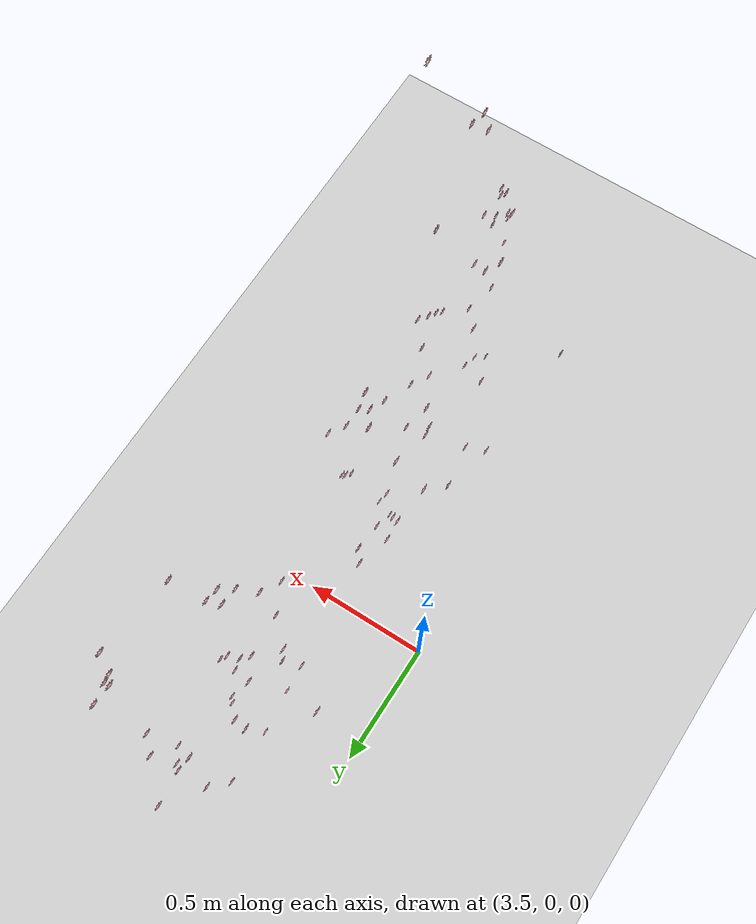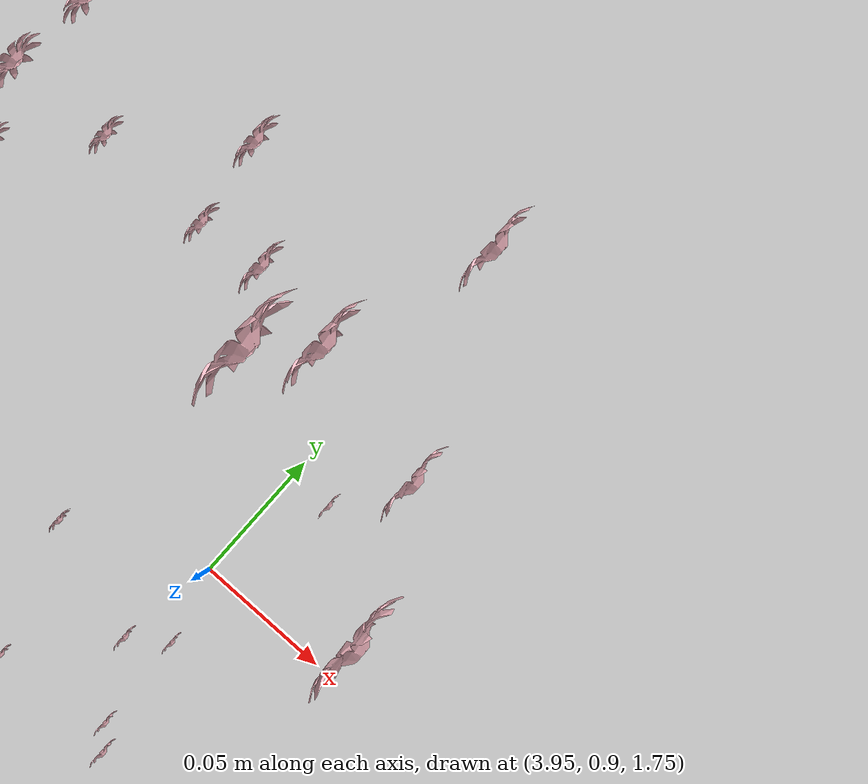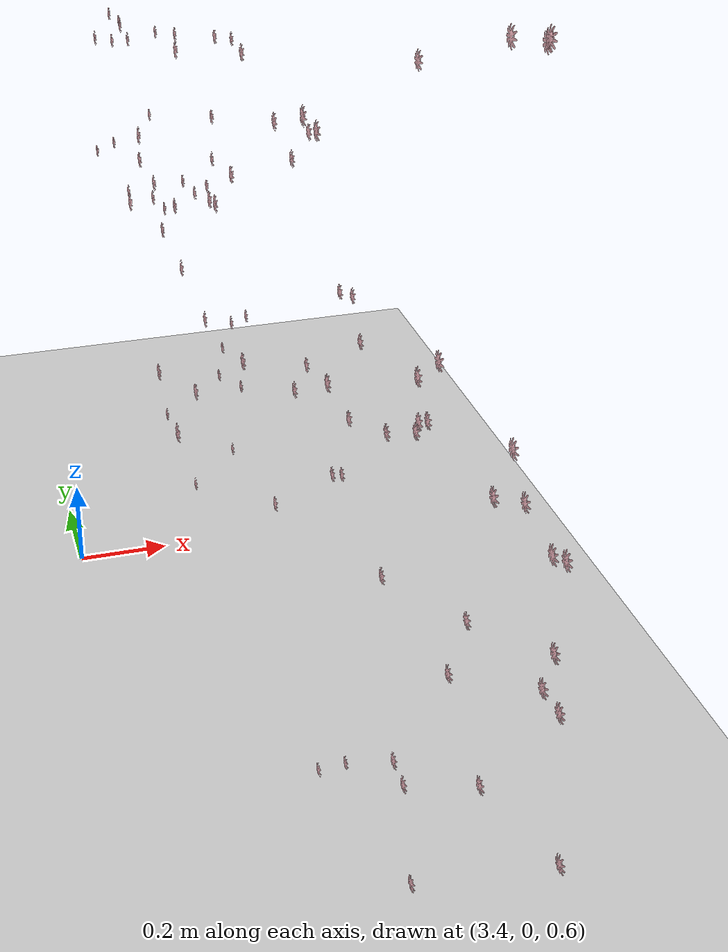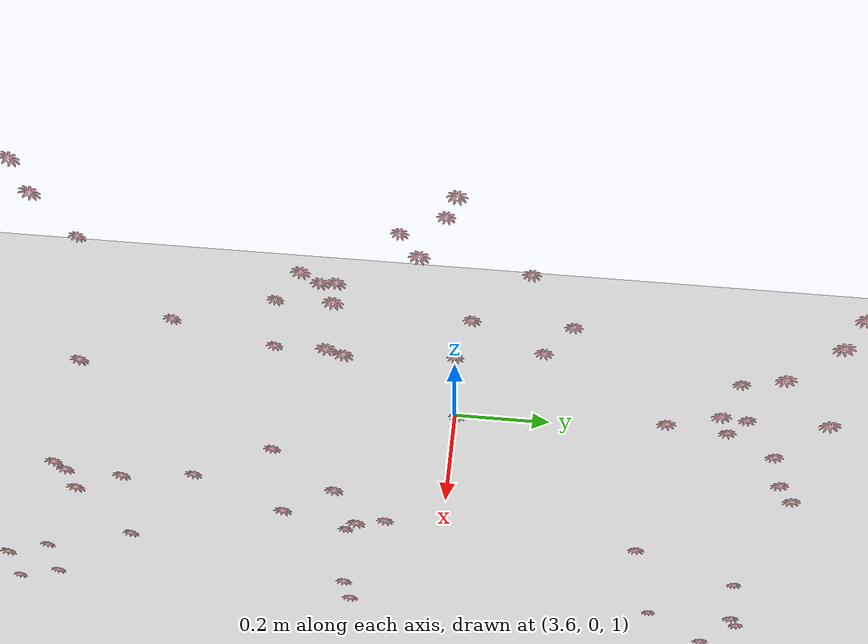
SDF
<?xml version="1.0" ?>
<sdf version="1.4">
  <world name="pollination_world">
    <include>
      <uri>model://ground_plane</uri>
    </include>
    <include>
      <uri>model://sun</uri>
    </include>

    <!-- //__________________________start add targets_________________________// -->
<include>
  <uri>model://flower2</uri>
  <name>target0</name>
  <pose>3.811854703426361 -0.198925614356995 0.847505693435669 0 -1.57 0</pose>
</include>
<include>
  <uri>model://flower2</uri>
  <name>target1</name>
  <pose>3.9413291144371034 -0.374187941551208 0.196296977996826 0 -1.57 0</pose>
</include>
<include>
  <uri>model://flower2</uri>
  <name>target2</name>
  <pose>3.880312125682831 -0.35691833019256597 0.173609752655029 0 -1.57 0</pose>
</include>
<include>
  <uri>model://flower2</uri>
  <name>target3</name>
  <pose>3.9065389323234556 -0.623567585945129 0.9475400352478031 0 -1.57 0</pose>
</include>
<include>
  <uri>model://flower2</uri>
  <name>target4</name>
  <pose>3.853332622051239 -0.8787138795852659 0.717423534393311 0 -1.57 0</pose>
</include>
<include>
  <uri>model://flower2</uri>
  <name>target5</name>
  <pose>3.855951926708221 -1.0008076143264801 0.5203785705566409 0 -1.57 0</pose>
</include>
<include>
  <uri>model://flower2</uri>
  <name>target6</name>
  <pose>3.923054749965668 -1.09487541675568 0.8533997631072999 0 -1.57 0</pose>
</include>
<include>
  <uri>model://flower2</uri>
  <name>target7</name>
  <pose>3.980927789211273 -1.28488209247589 0.85346474647522 0 -1.57 0</pose>
</include>
<include>
  <uri>model://flower2</uri>
  <name>target8</name>
  <pose>3.881071412563324 -0.868321042060852 0.637629718780518 0 -1.57 0</pose>
</include>
<include>
  <uri>model://flower2</uri>
  <name>target9</name>
  <pose>3.9756541228294373 -0.163814749717712 0.8746062469482421 0 -1.57 0</pose>
</include>
<include>
  <uri>model://flower2</uri>
  <name>target10</name>
  <pose>3.9478764510154725 -0.179800801277161 0.890403757095337 0 -1.57 0</pose>
</include>
<include>
  <uri>model://flower2</uri>
  <name>target11</name>
  <pose>3.922624576091766 -1.07530163288116 1.5165232086181601 0 -1.57 0</pose>
</include>
<include>
  <uri>model://flower2</uri>
  <name>target12</name>
  <pose>3.9833188033103943 -1.16993748188019 1.1948593211174 0 -1.57 0</pose>
</include>
<include>
  <uri>model://flower2</uri>
  <name>target13</name>
  <pose>3.9680015349388125 -1.23565037250519 1.13581125378609 0 -1.57 0</pose>
</include>
<include>
  <uri>model://flower2</uri>
  <name>target14</name>
  <pose>3.9510947108268737 -1.2056594133377099 1.1623325514793401 0 -1.57 0</pose>
</include>
<include>
  <uri>model://flower2</uri>
  <name>target15</name>
  <pose>3.9804967856407165 -1.17003841876984 1.37232614994049 0 -1.57 0</pose>
</include>
<include>
  <uri>model://flower2</uri>
  <name>target16</name>
  <pose>3.9697021651268005 -1.14680481433868 1.36801821708679 0 -1.57 0</pose>
</include>
<include>
  <uri>model://flower2</uri>
  <name>target17</name>
  <pose>3.989009473323822 -0.843062252998352 0.99578902721405 0 -1.57 0</pose>
</include>
<include>
  <uri>model://flower2</uri>
  <name>target18</name>
  <pose>3.9246273684501647 -0.9254810380935671 0.955590238571167 0 -1.57 0</pose>
</include>
<include>
  <uri>model://flower2</uri>
  <name>target19</name>
  <pose>3.974273660182953 -0.63024929523468 1.29217159748077 0 -1.57 0</pose>
</include>
<include>
  <uri>model://flower2</uri>
  <name>target20</name>
  <pose>3.9480139994621277 -0.6521764993667599 1.30712275028229 0 -1.57 0</pose>
</include>
<include>
  <uri>model://flower2</uri>
  <name>target21</name>
  <pose>3.9190586733818056 -0.571501240730286 1.24049582242966 0 -1.57 0</pose>
</include>
<include>
  <uri>model://flower2</uri>
  <name>target22</name>
  <pose>3.972270276546478 -1.03800556659698 1.38818074226379 0 -1.57 0</pose>
</include>
<include>
  <uri>model://flower2</uri>
  <name>target23</name>
  <pose>3.928138234615326 -1.01814388751984 1.39341772079468 0 -1.57 0</pose>
</include>
<include>
  <uri>model://flower2</uri>
  <name>target24</name>
  <pose>3.9250788569450377 -0.597917084693909 1.94507493972778 0 -1.57 0</pose>
</include>
<include>
  <uri>model://flower2</uri>
  <name>target25</name>
  <pose>3.9938568663597107 -0.898326840400696 2.05459264755249 0 -1.57 0</pose>
</include>
<include>
  <uri>model://flower2</uri>
  <name>target26</name>
  <pose>3.977669198513031 -0.9391159486770629 2.0724974250793498 0 -1.57 0</pose>
</include>
<include>
  <uri>model://flower2</uri>
  <name>target27</name>
  <pose>3.9392718386650083 -0.8974258852005 2.06510564804077 0 -1.57 0</pose>
</include>
<include>
  <uri>model://flower2</uri>
  <name>target28</name>
  <pose>3.995604703426361 -0.599854893684387 2.66763029098511 0 -1.57 0</pose>
</include>
<include>
  <uri>model://flower2</uri>
  <name>target29</name>
  <pose>3.756909663677216 -0.610247025489807 1.8490823554992701 0 -1.57 0</pose>
</include>
<include>
  <uri>model://flower2</uri>
  <name>target30</name>
  <pose>3.725073618888855 -0.639807190895081 1.88637426376343 0 -1.57 0</pose>
</include>
<include>
  <uri>model://flower2</uri>
  <name>target31</name>
  <pose>3.817332293987274 -0.312708449363708 1.2013356512785 0 -1.57 0</pose>
</include>
<include>
  <uri>model://flower2</uri>
  <name>target32</name>
  <pose>3.877674157619476 -0.8038682985305791 1.4933322429656999 0 -1.57 0</pose>
</include>
<include>
  <uri>model://flower2</uri>
  <name>target33</name>
  <pose>3.9708507323265074 -0.258897976875305 1.26047307372093 0 -1.57 0</pose>
</include>
<include>
  <uri>model://flower2</uri>
  <name>target34</name>
  <pose>3.886701323986053 -0.450131001472473 1.20439617455006 0 -1.57 0</pose>
</include>
<include>
  <uri>model://flower2</uri>
  <name>target35</name>
  <pose>3.663096728920937 -0.502863850593567 1.3904647254943798 0 -1.57 0</pose>
</include>
<include>
  <uri>model://flower2</uri>
  <name>target36</name>
  <pose>3.777468950748444 -0.644111695289612 1.4078600692749001 0 -1.57 0</pose>
</include>
<include>
  <uri>model://flower2</uri>
  <name>target37</name>
  <pose>3.49685909986496 -0.723827481269836 1.39924926757813 0 -1.57 0</pose>
</include>
<include>
  <uri>model://flower2</uri>
  <name>target38</name>
  <pose>3.9334561610221863 -0.677683110237122 1.3043656682968099 0 -1.57 0</pose>
</include>
<include>
  <uri>model://flower2</uri>
  <name>target39</name>
  <pose>3.844252021312714 -0.961726269721985 1.61209173202515 0 -1.57 0</pose>
</include>
<include>
  <uri>model://flower2</uri>
  <name>target40</name>
  <pose>3.932240331172943 0.585692019462585 0.687498550415039 0 -1.57 0</pose>
</include>
<include>
  <uri>model://flower2</uri>
  <name>target41</name>
  <pose>3.781292488574982 0.503812460899353 0.44389978408813496 0 -1.57 0</pose>
</include>
<include>
  <uri>model://flower2</uri>
  <name>target42</name>
  <pose>3.953522517681122 0.613882479667664 0.886912651062012 0 -1.57 0</pose>
</include>
<include>
  <uri>model://flower2</uri>
  <name>target43</name>
  <pose>3.889002559185028 0.663838534355164 0.686715030670166 0 -1.57 0</pose>
</include>
<include>
  <uri>model://flower2</uri>
  <name>target44</name>
  <pose>3.9214482855796815 0.647487101554871 0.44784559249877903 0 -1.57 0</pose>
</include>
<include>
  <uri>model://flower2</uri>
  <name>target45</name>
  <pose>3.743596580028534 0.6876015424728389 0.5665639305114749 0 -1.57 0</pose>
</include>
<include>
  <uri>model://flower2</uri>
  <name>target46</name>
  <pose>3.955040624141693 0.8996556043624879 0.639692707061768 0 -1.57 0</pose>
</include>
<include>
  <uri>model://flower2</uri>
  <name>target47</name>
  <pose>3.862798459529877 1.01609027385712 1.5392929649353 0 -1.57 0</pose>
</include>
<include>
  <uri>model://flower2</uri>
  <name>target48</name>
  <pose>3.818658177852631 1.0608224058151199 1.53423749923706 0 -1.57 0</pose>
</include>
<include>
  <uri>model://flower2</uri>
  <name>target49</name>
  <pose>3.785798623561859 1.01756724834442 1.3244892692565902 0 -1.57 0</pose>
</include>
<include>
  <uri>model://flower2</uri>
  <name>target50</name>
  <pose>3.685101091861725 1.02055194377899 1.2535019659996 0 -1.57 0</pose>
</include>
<include>
  <uri>model://flower2</uri>
  <name>target51</name>
  <pose>3.630629891455173 0.96619975566864 1.25469722986221 0 -1.57 0</pose>
</include>
<include>
  <uri>model://flower2</uri>
  <name>target52</name>
  <pose>3.9221586966514588 0.6249181699752809 1.63211572647095 0 -1.57 0</pose>
</include>
<include>
  <uri>model://flower2</uri>
  <name>target53</name>
  <pose>3.862258508205414 0.6574630308151249 1.25024144053459 0 -1.57 0</pose>
</include>
<include>
  <uri>model://flower2</uri>
  <name>target54</name>
  <pose>3.826616370677948 0.6400485181808471 1.24093549132347 0 -1.57 0</pose>
</include>
<include>
  <uri>model://flower2</uri>
  <name>target55</name>
  <pose>3.792501480579376 0.622141642570496 1.2851143932342501 0 -1.57 0</pose>
</include>
<include>
  <uri>model://flower2</uri>
  <name>target56</name>
  <pose>3.863497016429901 0.408685622215271 0.981791563034058 0 -1.57 0</pose>
</include>
<include>
  <uri>model://flower2</uri>
  <name>target57</name>
  <pose>3.9990121817588804 0.950092959403992 1.9337940406799299 0 -1.57 0</pose>
</include>
<include>
  <uri>model://flower2</uri>
  <name>target58</name>
  <pose>3.9338003325462343 0.988164896965027 1.97382204055786 0 -1.57 0</pose>
</include>
<include>
  <uri>model://flower2</uri>
  <name>target59</name>
  <pose>3.985540044307709 0.9882994413375851 1.7744047546386699 0 -1.57 0</pose>
</include>
<include>
  <uri>model://flower2</uri>
  <name>target60</name>
  <pose>3.9554673647880554 1.05911799907684 1.84132247924805 0 -1.57 0</pose>
</include>
<include>
  <uri>model://flower2</uri>
  <name>target61</name>
  <pose>3.939495942592621 1.00139060497284 1.88347131729126 0 -1.57 0</pose>
</include>
<include>
  <uri>model://flower2</uri>
  <name>target62</name>
  <pose>3.9984483122825623 -0.11968624830246 1.29387466669083 0 -1.57 0</pose>
</include>
<include>
  <uri>model://flower2</uri>
  <name>target63</name>
  <pose>3.9557813811302185 -0.162163786888123 1.32973291873932 0 -1.57 0</pose>
</include>
<include>
  <uri>model://flower2</uri>
  <name>target64</name>
  <pose>3.81953072309494 0.406051573753357 1.4201963233947799 0 -1.57 0</pose>
</include>
<include>
  <uri>model://flower2</uri>
  <name>target65</name>
  <pose>3.716168134212494 1.01035132884979 1.57354825973511 0 -1.57 0</pose>
</include>
<include>
  <uri>model://flower2</uri>
  <name>target66</name>
  <pose>3.721227786540985 1.05619479656219 1.5735789108276401 0 -1.57 0</pose>
</include>
<include>
  <uri>model://flower2</uri>
  <name>target67</name>
  <pose>3.712605893611908 1.16418574810028 1.56365213394165 0 -1.57 0</pose>
</include>
<include>
  <uri>model://flower2</uri>
  <name>target68</name>
  <pose>3.668428925871849 0.854355082511902 1.5826831626892102 0 -1.57 0</pose>
</include>
<include>
  <uri>model://flower2</uri>
  <name>target69</name>
  <pose>3.627075338363647 0.861380724906921 1.5898114204406701 0 -1.57 0</pose>
</include>
<include>
  <uri>model://flower2</uri>
  <name>target70</name>
  <pose>3.690891919136047 0.748510088920593 1.6129704856872602 0 -1.57 0</pose>
</include>
<include>
  <uri>model://flower2</uri>
  <name>target71</name>
  <pose>3.458744971752167 0.746881709098816 1.7885507774353 0 -1.57 0</pose>
</include>
<include>
  <uri>model://flower2</uri>
  <name>target72</name>
  <pose>3.864740550518036 0.554875311851501 1.66205564498901 0 -1.57 0</pose>
</include>
<include>
  <uri>model://flower2</uri>
  <name>target73</name>
  <pose>3.838068339824677 0.6417714643478389 1.7987294006347698 0 -1.57 0</pose>
</include>
<include>
  <uri>model://flower2</uri>
  <name>target74</name>
  <pose>3.99961728811264 0.6665740156173711 1.80426927566528 0 -1.57 0</pose>
</include>
<include>
  <uri>model://flower2</uri>
  <name>target75</name>
  <pose>3.878666598796844 0.610954966545105 1.7800895690918 0 -1.57 0</pose>
</include>
<include>
  <uri>model://flower2</uri>
  <name>target76</name>
  <pose>3.839006011486053 0.487346873283386 1.4928670406341602 0 -1.57 0</pose>
</include>
<include>
  <uri>model://flower2</uri>
  <name>target77</name>
  <pose>3.729092423915863 0.5452121686935419 1.24912249445915 0 -1.57 0</pose>
</include>
<include>
  <uri>model://flower2</uri>
  <name>target78</name>
  <pose>3.707833082675934 0.57956889629364 1.26595729351044 0 -1.57 0</pose>
</include>
<include>
  <uri>model://flower2</uri>
  <name>target79</name>
  <pose>3.645601866692305 0.566067328453064 1.2925151324272202 0 -1.57 0</pose>
</include>
<include>
  <uri>model://flower2</uri>
  <name>target80</name>
  <pose>3.6634892141819 0.0272116661071777 1.7993401145935102 0 -1.57 0</pose>
</include>
<include>
  <uri>model://flower2</uri>
  <name>target81</name>
  <pose>3.6847550415992743 -0.205706753730774 1.5709303092956501 0 -1.57 0</pose>
</include>
<include>
  <uri>model://flower2</uri>
  <name>target82</name>
  <pose>3.680170730352402 -0.178555407524109 1.56810359954834 0 -1.57 0</pose>
</include>
<include>
  <uri>model://flower2</uri>
  <name>target83</name>
  <pose>3.711236965656281 -0.228201713562012 1.63527437210083 0 -1.57 0</pose>
</include>
<include>
  <uri>model://flower2</uri>
  <name>target84</name>
  <pose>3.855256192684174 -0.13777222156524702 1.61879768371582 0 -1.57 0</pose>
</include>
<include>
  <uri>model://flower2</uri>
  <name>target85</name>
  <pose>3.883131062984467 -0.156049227714539 1.6769769859313999 0 -1.57 0</pose>
</include>
<include>
  <uri>model://flower2</uri>
  <name>target86</name>
  <pose>3.814289510250092 -0.153531913757324 1.70363296508789 0 -1.57 0</pose>
</include>
<include>
  <uri>model://flower2</uri>
  <name>target87</name>
  <pose>3.684362267255783 0.18776662349700898 1.40535863876343 0 -1.57 0</pose>
</include>
<include>
  <uri>model://flower2</uri>
  <name>target88</name>
  <pose>3.62980298101902 0.052233409881591794 1.41258234977722 0 -1.57 0</pose>
</include>
<include>
  <uri>model://flower2</uri>
  <name>target89</name>
  <pose>3.784711329936981 -0.018907387256622298 1.7987143325805701 0 -1.57 0</pose>
</include>
<include>
  <uri>model://flower2</uri>
  <name>target90</name>
  <pose>3.605062243938446 0.154462828636169 1.5323743915557901 0 -1.57 0</pose>
</include>
<include>
  <uri>model://flower2</uri>
  <name>target91</name>
  <pose>3.53879004240036 -0.341863331794739 1.2975000166893 0 -1.57 0</pose>
</include>
<include>
  <uri>model://flower2</uri>
  <name>target92</name>
  <pose>3.541293098926544 -0.0869888764619827 1.54004382133484 0 -1.57 0</pose>
</include>
<include>
  <uri>model://flower2</uri>
  <name>target93</name>
  <pose>3.578660814762115 0.0010814905166626 1.64215154647827 0 -1.57 0</pose>
</include>
<include>
  <uri>model://flower2</uri>
  <name>target94</name>
  <pose>3.9106799483299257 -0.0872258001565933 1.12296447455883 0 -1.57 0</pose>
</include>
<include>
  <uri>model://flower2</uri>
  <name>target95</name>
  <pose>3.662348991036415 0.0245999813079834 1.3328786182403602 0 -1.57 0</pose>
</include>
<include>
  <uri>model://flower2</uri>
  <name>target96</name>
  <pose>3.648974304795265 0.23689166545867898 1.44344213485718 0 -1.57 0</pose>
</include>
<include>
  <uri>model://flower2</uri>
  <name>target97</name>
  <pose>3.712797849178314 0.0324357271194458 1.20001668989658 0 -1.57 0</pose>
</include>
<include>
  <uri>model://flower2</uri>
  <name>target98</name>
  <pose>3.610163980722427 -0.338471894264221 1.24241765856743 0 -1.57 0</pose>
</include>
  <!-- //_________________________finish add target_______________________________// -->

    <scene>
      <shadows>false</shadows>
    </scene>

    <!-- Only one ROS interface plugin is required per world, as any other plugin can connect a Gazebo
         topic to a ROS topic (or vise versa). -->
    <plugin name="ros_interface_plugin" filename="librotors_gazebo_ros_interface_plugin.so"/>

    <spherical_coordinates>
      <surface_model>EARTH_WGS84</surface_model>
      <latitude_deg>47.3667</latitude_deg>
      <longitude_deg>8.5500</longitude_deg>
      <elevation>500.0</elevation>
      <heading_deg>0</heading_deg>
    </spherical_coordinates>
    <physics type='ode'>
      <ode>
        <solver>
          <type>quick</type>
          <iters>700</iters>
          <sor>1.3</sor>
        </solver>
        <constraints>
          <cfm>0</cfm>
          <erp>0.2</erp>
          <contact_max_correcting_vel>100</contact_max_correcting_vel>
          <contact_surface_layer>0.001</contact_surface_layer>
        </constraints>
      </ode>
      <max_step_size>0.01</max_step_size>
      <real_time_factor>1</real_time_factor>
      <real_time_update_rate>100</real_time_update_rate>
      <gravity>0 0 -9.8</gravity>
    </physics>
  </world>
</sdf>

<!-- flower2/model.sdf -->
<sdf version="1.5">
  <model name="flower">
    <static>true</static>
    <link name="link">
      <pose>0 0 0 0 0 0</pose>

      <visual name="visual">
        <geometry>
          <mesh>
            <uri>model://flower2/meshes/flower.STL</uri>
            <scale>0.001 0.001 0.001</scale>
          </mesh>
        </geometry>
        <material> <!-- Wheel material -->
          <ambient>1 0.75 0.79 1</ambient>
          <diffuse>1 0.75 0.79 1</diffuse>
          <specular>1 1 1 1</specular>
          <emissive>0 0 0 1</emissive>
        </material> <!-- End wheel material -->
      </visual>

    </link>
  </model>
</sdf>
